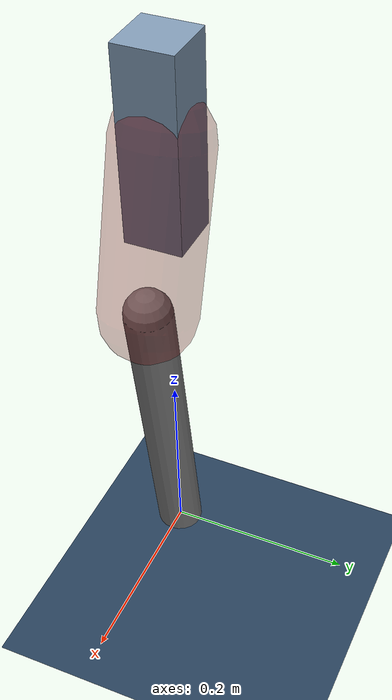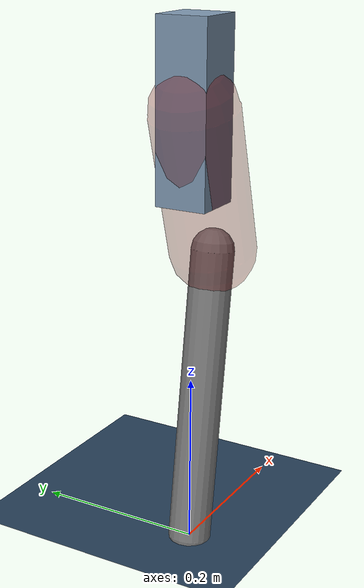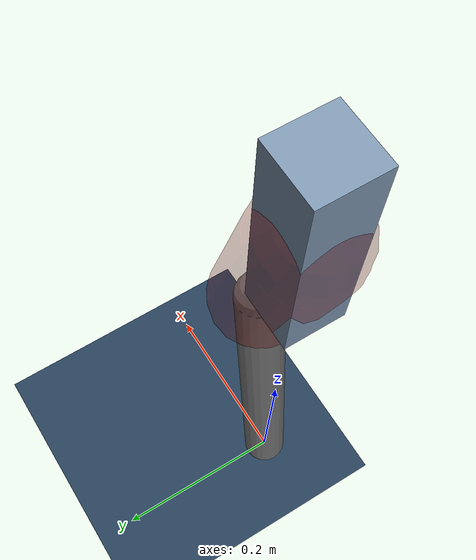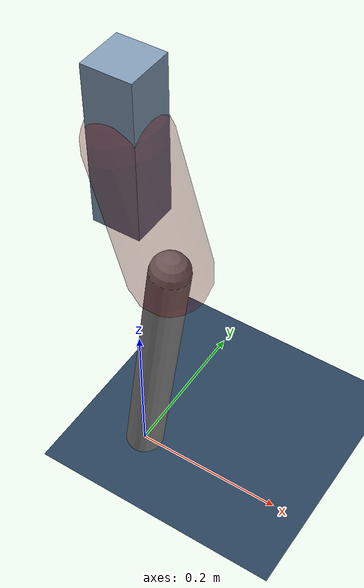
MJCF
<mujoco model="Hopper2D">
	<compiler inertiafromgeom="true" angle="radian" />
	<option timestep="0.001" integrator="implicit" cone="elliptic" solver="Newton" tolerance="1e-10" />

	<default>
		<geom contype="1" conaffinity="1" condim="3" friction="2 0.005 0.0001" solref="0.005 1" />
		<joint limited="true" damping="0.1" />
	</default>

	<asset>
		<texture name="skybox" type="skybox" builtin="gradient" rgb1=".4 .6 .8" rgb2="0 0 0" width="800" height="800" />
		<texture name="grid" type="2d" builtin="checker" rgb1=".1 .2 .3" rgb2=".2 .3 .4" width="300" height="300" mark="edge" markrgb=".2 .3 .4" />
		<material name="ground" texture="grid" texrepeat="1 1" texuniform="true" reflectance="0.1" />
		<material name="leg" rgba="0.5 0.6 0.7 1" />
	</asset>

	<worldbody>

		<geom name="floor" type="plane" size="5 5 0.25" material="ground" />

		<light directional="false" diffuse="0.8 0.8 0.8" specular="0.3 0.3 0.3" pos="0 0 2" dir="0 0 -1" />
		<light mode="targetbodycom" target="base" directional="false" diffuse="0.8 0.8 0.8" specular="0.3 0.3 0.3" pos="0 0 2" dir="0 0 -1" />

		<camera name="fixed" pos="0 -2 1" xyaxes="1 0 0 0 0 1" />
		<camera name="tracking" mode="trackcom" pos="0 -3 1" />

		<body name="root" pos="0 0 0.5065437912998014">
			<joint name="slide_x" type="slide" axis="1 0 0" range="-100 100" />
			<joint name="slide_z" type="slide" axis="0 0 1" range="0 10" />

			<body name="base" pos="0 0 0">
				<geom name="torso" type="box" size="0.03 0.03 0.1" mass="2.811" material="leg" />

				<body name="link1" pos="0 0 0" euler="0 1.28787676270299 0">
					<joint type="hinge" axis="0 -1 0" pos="0 0 0" name="hinge1" limited="true" range="-3.14 3.14" stiffness="0" damping="0.1" />
					<geom name="thigh" type="capsule" fromto="0 0 0 0.16973439080848432 0 0" size="0.05" rgba="0.5 0 0 0.3" mass="0.6556625379403623" />

					<body name="link2" pos="0.16973439080848432 0 0" euler="0 0.41997402190953054 0">
						<joint type="hinge" axis="0 -1 0" pos="0 0 0" name="hinge2" limited="true" range="-3.14 3.14" stiffness="0" damping="0.1" />
						<geom name="shank" type="capsule" fromto="0 0 0 0.3468094004913171 0 0" size="0.025" mass="0.5213475203930537" />

					</body>
				</body>
			</body>
		</body>
	</worldbody>

	<actuator>
		<motor name="torque1" joint="hinge1" ctrlrange="-106.23757187531191 106.23757187531191" ctrllimited="true" gear="1" />
		<motor name="torque2" joint="hinge2" ctrlrange="-105.81144942049319 105.81144942049319" ctrllimited="true" gear="1" />
	</actuator>
</mujoco>
